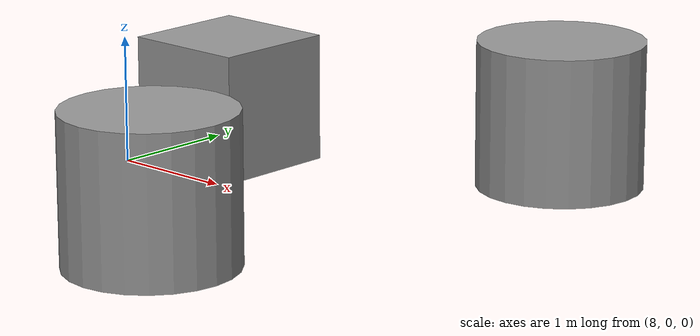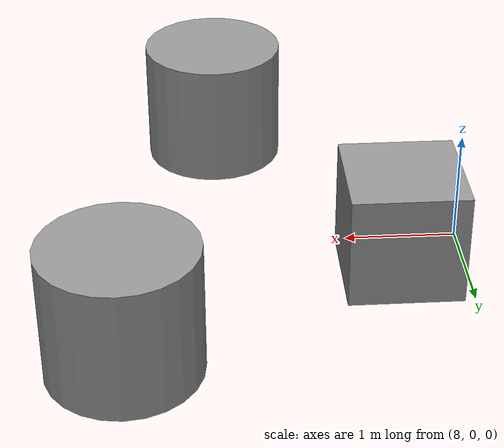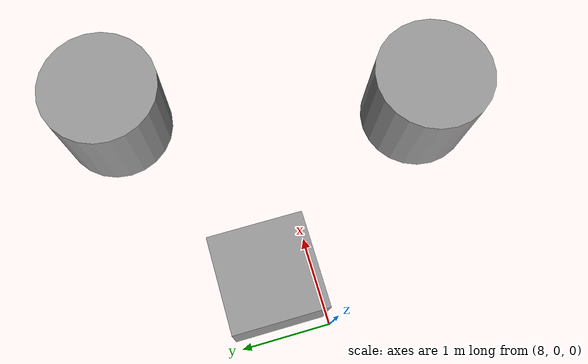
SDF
<sdf version="1.7">
 <world name="outdoor">
  <model name="unit_box_0">
   <pose>8.59861 0.544357 0.51 0 -0 0</pose>
   <link name="link">
    <inertial>
     <mass>1</mass>
     <inertia>
      <ixx>0.166667</ixx>
      <ixy>0</ixy>
      <ixz>0</ixz>
      <iyy>0.166667</iyy>
      <iyz>0</iyz>
      <izz>0.166667</izz>
     </inertia>
    </inertial>
    <collision name="collision"><geometry><box><size>1 1 1</size></box></geometry></collision>
    <visual name="visual">
     <geometry><box><size>1 1 1</size></box></geometry>
     <material>
      <script><name>Gazebo/Grey</name><uri>file://media/materials/scripts/gazebo.material</uri></script>
     </material>
    </visual>
   </link>
  </model>
  <model name="unit_cylinder">
   <pose>10.1255 -1.74885 0.578117 -0.000375 -2.4e-05 2e-06</pose>
   <link name="link">
    <inertial>
     <mass>1</mass>
     <inertia><ixx>0.145833</ixx><ixy>0</ixy><ixz>0</ixz><iyy>0.145833</iyy><iyz>0</iyz><izz>0.125</izz></inertia>
    </inertial>
    <collision name="collision">
     <geometry><cylinder><radius>0.646415</radius><length>1.13672</length></cylinder></geometry>
    </collision>
    <visual name="visual">
     <geometry><cylinder><radius>0.646415</radius><length>1.13672</length></cylinder></geometry>
     <material>
      <script><name>Gazebo/Grey</name><uri>file://media/materials/scripts/gazebo.material</uri></script>
     </material>
    </visual>
   </link>
  </model>
  <model name="unit_cylinder_clone">
   <pose>10.9554 1.74569 0.578231 0.000128 -0.000153 4.7e-05</pose>
   <link name="link">
    <inertial>
     <mass>1</mass>
     <inertia><ixx>0.145833</ixx><ixy>0</ixy><ixz>0</ixz><iyy>0.145833</iyy><iyz>0</iyz><izz>0.125</izz></inertia>
    </inertial>
    <collision name="collision">
     <geometry><cylinder><radius>0.646415</radius><length>1.13672</length></cylinder></geometry>
    </collision>
    <visual name="visual">
     <geometry><cylinder><radius>0.646415</radius><length>1.13672</length></cylinder></geometry>
     <material>
      <script><name>Gazebo/Grey</name><uri>file://media/materials/scripts/gazebo.material</uri></script>
     </material>
    </visual>
   </link>
  </model>
 </world>
</sdf>
